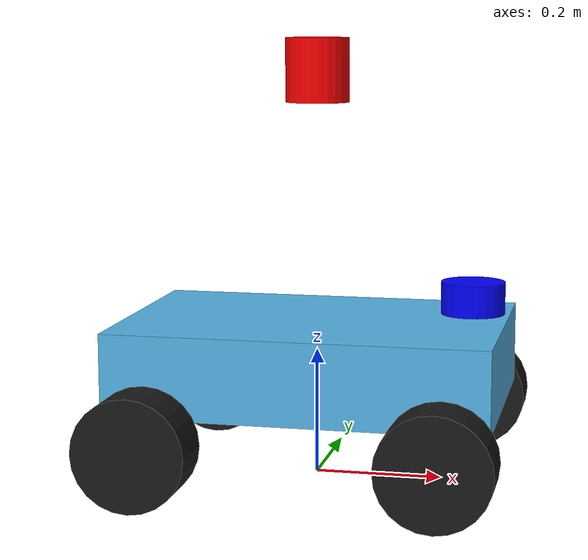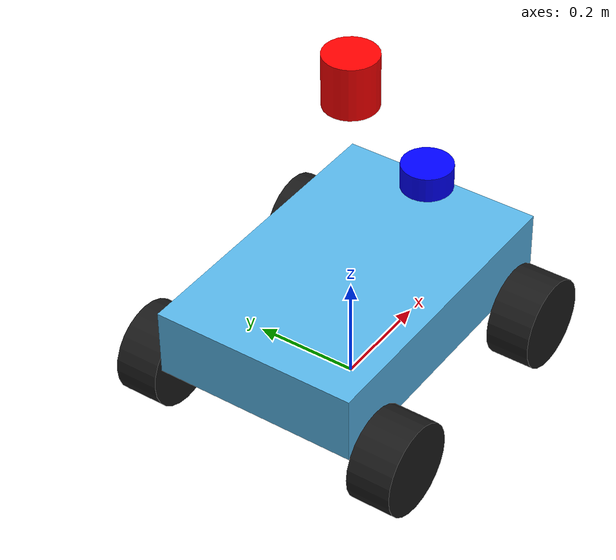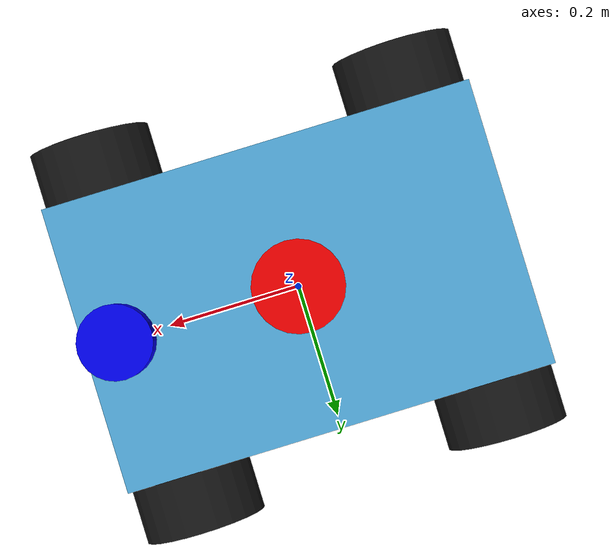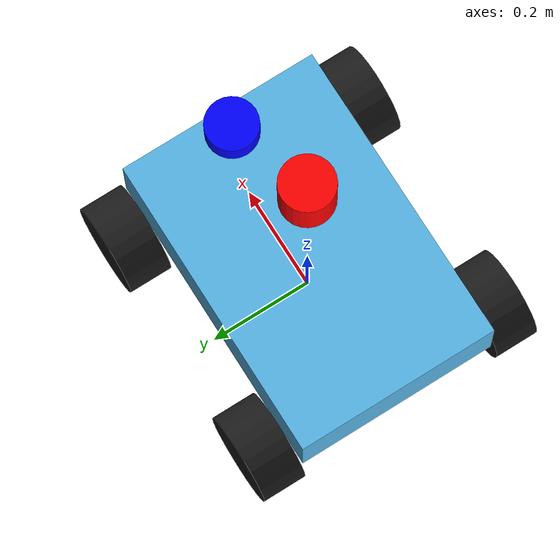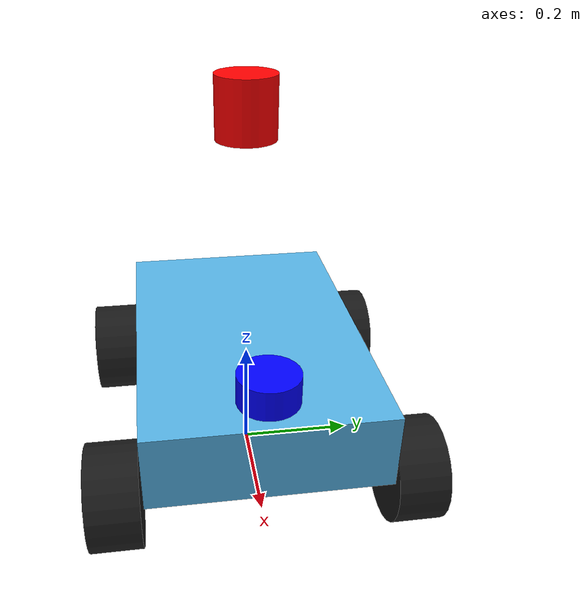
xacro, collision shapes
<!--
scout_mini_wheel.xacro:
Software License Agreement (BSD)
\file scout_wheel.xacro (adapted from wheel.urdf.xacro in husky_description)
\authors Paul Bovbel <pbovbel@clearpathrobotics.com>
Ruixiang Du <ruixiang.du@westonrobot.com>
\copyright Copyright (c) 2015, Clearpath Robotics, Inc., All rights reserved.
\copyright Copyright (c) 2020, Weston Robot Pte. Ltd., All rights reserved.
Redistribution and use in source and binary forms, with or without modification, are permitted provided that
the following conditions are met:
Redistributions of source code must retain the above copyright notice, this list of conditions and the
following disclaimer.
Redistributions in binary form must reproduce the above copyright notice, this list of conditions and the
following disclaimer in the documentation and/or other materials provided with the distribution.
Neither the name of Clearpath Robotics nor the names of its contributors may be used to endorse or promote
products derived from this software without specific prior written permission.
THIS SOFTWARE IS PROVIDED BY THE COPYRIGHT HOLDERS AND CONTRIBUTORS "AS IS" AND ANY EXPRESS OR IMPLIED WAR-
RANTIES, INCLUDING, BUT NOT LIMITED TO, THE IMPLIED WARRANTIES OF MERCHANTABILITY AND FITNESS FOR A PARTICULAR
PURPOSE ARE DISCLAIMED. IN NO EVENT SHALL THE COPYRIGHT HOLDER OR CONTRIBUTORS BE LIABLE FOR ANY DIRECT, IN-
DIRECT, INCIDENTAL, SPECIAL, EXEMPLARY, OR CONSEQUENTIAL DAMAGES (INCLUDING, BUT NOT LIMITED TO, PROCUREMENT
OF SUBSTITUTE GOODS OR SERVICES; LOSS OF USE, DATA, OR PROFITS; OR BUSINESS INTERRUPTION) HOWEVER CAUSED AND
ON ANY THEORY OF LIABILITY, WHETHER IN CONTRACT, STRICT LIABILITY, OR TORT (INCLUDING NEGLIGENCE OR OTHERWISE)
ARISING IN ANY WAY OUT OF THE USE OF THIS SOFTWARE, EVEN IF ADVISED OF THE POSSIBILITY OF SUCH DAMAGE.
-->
<?xml version="1.0"?>

<robot name="scout_mini"
    xmlns:xacro="http://ros.org/wiki/xacro"
    xmlns:controller="http://playerstage.sourceforge.net/gazebo/xmlschema/#controller"
    xmlns:interface="http://playerstage.sourceforge.net/gazebo/xmlschema/#interface"
    xmlns:sensor="http://playerstage.sourceforge.net/gazebo/xmlschema/#sensor">

    <xacro:arg name="robot_namespace" default="/" />

    <xacro:include filename="$(find scout_description)/urdf/scout_mini/scout_mini_wheel.xacro" />

    <!-- Variables -->
    <xacro:property name="M_PI" value="3.14159265359"/>

    <!-- Vehicle Geometries -->
    <xacro:property name="base_x_size" value="0.595000" />
    <xacro:property name="base_y_size" value="0.395000" />
    <xacro:property name="base_z_size" value="0.130000" />
    <xacro:property name="wheelbase" value="0.452" />
    <xacro:property name="track" value="0.49" />
    <xacro:property name="wheel_vertical_offset" value="-0.0905" />
    <xacro:property name="wheel_length" value="0.8520e-01" />
    <xacro:property name="wheel_radius" value="0.8750e-01" />

    <!-- Sensor Properties -->
    <xacro:property name="imu_stdev" value="0.0001" />
    <xacro:property name="imu_width" value="0.036"/>
    <xacro:property name="imu_length" value="0.038"/>
    <xacro:property name="imu_height" value="0.012"/>
    <xacro:property name="imu_offset_x" value="0"/>
    <xacro:property name="imu_offset_y" value="0"/>
    <xacro:property name="imu_offset_z" value="${-base_z_size/2 + 0.005 + 0.007}"/>

    <!-- Base Footprint (Root Link) -->
    <link name="base_footprint"/>

    <!-- Base Link -->
    <link name="base_link">
        <visual>
            <origin xyz="0 0 0" rpy="0 0 0" />
            <geometry>
                <mesh filename="package://scout_description/meshes/scout_mini/mini_base_link.dae" />
            </geometry>
        </visual>
        <collision>
            <origin xyz="0 0 0.008" rpy="0 0 0" />
            <geometry>
                <box size="${base_x_size} ${base_y_size} ${base_z_size}"/>
            </geometry>
        </collision>
        <inertial>
            <mass value="18" />
            <origin xyz="0.0 0.0 0.0" />
            <inertia ixx="2.288641" ixy="0" ixz="0" iyy="5.103976" iyz="0" izz="3.431465" />
        </inertial>
    </link>

    <!-- Joint connecting base_footprint to base_link -->
    <joint name="base_footprint_to_base_joint" type="fixed">
        <parent link="base_footprint" />
        <child link="base_link" />
        <origin xyz="0 0 ${wheel_radius - wheel_vertical_offset}" rpy="0 0 0" />
    </joint>

    <!-- IMU Sensor -->
    <link name="imu">
        <visual>
            <origin xyz="0 0 0" rpy="0 0 0" />
            <geometry>
                <box size="${imu_length} ${imu_width} ${imu_height}"/>
            </geometry>
            <material name="white">
                <color rgba="0.8 0.8 0.8 1" />
            </material>
        </visual>
        <collision>
            <geometry>
                <box size="${imu_length} ${imu_width} ${imu_height}"/>
            </geometry>
        </collision>
        <inertial>
            <mass value="0.01" />
            <origin xyz="0 0 0" />
            <inertia ixx="0.000001" ixy="0" ixz="0" iyy="0.000001" iyz="0" izz="0.000001" />
        </inertial>
    </link>

    <joint name="imu_to_base_joint" type="fixed">
        <parent link="base_link" />
        <child link="imu" />
        <origin xyz="${imu_offset_x} ${imu_offset_y} ${imu_offset_z}" rpy="${M_PI} 0 ${M_PI/2.0}" />
    </joint>

    <!-- 2D Laser Sensor -->
    <link name="laser2d">
        <visual>
            <origin xyz="0 0 0" rpy="0 0 0" />
            <geometry>
                <cylinder radius="0.05" length="0.05"/>
            </geometry>
            <material name="blue">
                <color rgba="0 0 1 1" />
            </material>
        </visual>
        <collision>
            <geometry>
                <cylinder radius="0.05" length="0.05"/>
            </geometry>
        </collision>
        <inertial>
            <mass value="0.05" />
            <origin xyz="0 0 0" />
            <inertia ixx="0.0001" ixy="0" ixz="0" iyy="0.0001" iyz="0" izz="0.0001" />
        </inertial>
    </link>

    <joint name="laser2d_to_base_joint" type="fixed">
        <parent link="base_link" />
        <child link="laser2d" />
        <origin xyz="${base_x_size/2 - 0.05} 0 ${base_z_size/2 + 0.05}"/>
    </joint>

    <!-- 3D Laser Sensor -->
    <link name="laser3d">
        <visual>
            <origin xyz="0 0 0" rpy="0 0 0" />
            <geometry>
                <cylinder radius="0.05" length="0.1"/>
            </geometry>
            <material name="red">
                <color rgba="1 0 0 1" />
            </material>
        </visual>
        <collision>
            <geometry>
                <cylinder radius="0.05" length="0.1"/>
            </geometry>
        </collision>
        <inertial>
            <mass value="0.1" />
            <origin xyz="0 0 0" />
            <inertia ixx="0.0002" ixy="0" ixz="0" iyy="0.0002" iyz="0" izz="0.0002" />
        </inertial>
    </link>

    <joint name="laser3d_to_base_joint" type="fixed">
        <parent link="base_link" />
        <child link="laser3d" />
        <origin xyz="0 0 ${base_z_size/2 + 0.4}"/>
    </joint>

    <!-- Scout wheel macros -->
    <xacro:scout_mini_wheel wheel_prefix="front_right">
        <origin xyz="${wheelbase/2} ${-track/2} ${wheel_vertical_offset}" rpy="0 0 0" />
    </xacro:scout_mini_wheel>
    <xacro:scout_mini_wheel wheel_prefix="front_left">
        <origin xyz="${wheelbase/2} ${track/2} ${wheel_vertical_offset}" rpy="0 0 0" />
    </xacro:scout_mini_wheel>
    <xacro:scout_mini_wheel wheel_prefix="rear_left">
        <origin xyz="${-wheelbase/2} ${track/2} ${wheel_vertical_offset}" rpy="0 0 0" />
    </xacro:scout_mini_wheel>
    <xacro:scout_mini_wheel wheel_prefix="rear_right">
        <origin xyz="${-wheelbase/2} ${-track/2} ${wheel_vertical_offset}" rpy="0 0 0" />
    </xacro:scout_mini_wheel>

    <!-- Gazebo Plugins (Unchanged) -->
    <gazebo reference="imu">
        <sensor name="imu" type="imu">
            <always_on>1</always_on>
            <update_rate>100</update_rate>
            <visualize>false</visualize>
            <topic>/model/robot/imu</topic>
            <frame_id>imu</frame_id>
            <gz_frame_id>imu</gz_frame_id>
            <ign_frame_id>imu</ign_frame_id>
        </sensor>
    </gazebo>

    <gazebo reference="laser2d">
        <sensor name="laser2d" type="gpu_lidar">
            <pose relative_to="laser2d">0 0 0 0 0 0</pose>
            <topic>/model/robot/scan</topic>
            <update_rate>10</update_rate>
            <ray>
                <scan>
                    <horizontal>
                        <samples>270</samples>
                        <resolution>1</resolution>
                        <min_angle>-2.356194</min_angle>
                        <max_angle>2.356194</max_angle>
                    </horizontal>
                    <vertical>
                        <samples>1</samples>
                        <resolution>0.01</resolution>
                        <min_angle>0</min_angle>
                        <max_angle>0</max_angle>
                    </vertical>
                </scan>
                <range>
                    <min>0.08</min>
                    <max>15.0</max>
                    <resolution>0.01</resolution>
                </range>
            </ray>
            <always_on>1</always_on>
            <visualize>true</visualize>
            <frame_id>laser2d</frame_id>
            <gz_frame_id>laser2d</gz_frame_id>
            <ign_frame_id>laser2d</ign_frame_id>
        </sensor>
    </gazebo>

    <gazebo reference="laser3d">
        <sensor name="laser3d" type="gpu_lidar">
            <pose relative_to="laser3d">0 0 0 0 0 0</pose>
            <topic>/model/robot/cloud</topic>
            <update_rate>10</update_rate>
            <ray>
                <scan>
                    <horizontal>
                        <samples>128</samples>
                        <resolution>0.01</resolution>
                        <min_angle>${-M_PI}</min_angle>
                        <max_angle>${M_PI}</max_angle>
                    </horizontal>
                    <vertical>
                        <samples>32</samples>
                        <resolution>0.01</resolution>
                        <min_angle>${-M_PI / 16.0}</min_angle>
                        <max_angle>${M_PI / 4.0}</max_angle>
                    </vertical>
                </scan>
                <range>
                    <min>0.2</min>
                    <max>100.0</max>
                    <resolution>0.01</resolution>
                </range>
            </ray>
            <always_on>1</always_on>
            <visualize>true</visualize>
            <frame_id>laser3d</frame_id>
            <gz_frame_id>laser3d</gz_frame_id>
            <ign_frame_id>laser3d</ign_frame_id>
        </sensor>
    </gazebo>

    <gazebo>
        <plugin
            filename="ignition-gazebo-pose-publisher-system"
            name="gz::sim::systems::PosePublisher">
            <use_pose_vector_msg>true</use_pose_vector_msg>
            <publish_nested_model_pose>true</publish_nested_model_pose>
            <static_publisher>true</static_publisher>
        </plugin>
    </gazebo>

    <ros2_control name="ScoutMiniGazeboSystem" type="system">
        <hardware>
            <plugin>gz_ros2_control/GazeboSimSystem</plugin>
        </hardware>
        <joint name="front_left_wheel">
            <command_interface name="velocity"/>
            <state_interface name="position"/>
            <state_interface name="velocity"/>
        </joint>
        <joint name="front_right_wheel">
            <command_interface name="velocity"/>
            <state_interface name="position"/>
            <state_interface name="velocity"/>
        </joint>
        <joint name="rear_left_wheel">
            <command_interface name="velocity"/>
            <state_interface name="position"/>
            <state_interface name="velocity"/>
        </joint>
        <joint name="rear_right_wheel">
            <command_interface name="velocity"/>
            <state_interface name="position"/>
            <state_interface name="velocity"/>
        </joint>
    </ros2_control>

    <gazebo>
        <plugin filename="libgz_ros2_control-system.so" name="gz_ros2_control::GazeboSimROS2ControlPlugin">
            <parameters>$(find scout_description)/config/control.yaml</parameters>
        </plugin>
    </gazebo>

</robot>

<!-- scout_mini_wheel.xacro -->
<robot xmlns:xacro="http://ros.org/wiki/xacro" name="scout_mini_wheel">

    <xacro:macro name="scout_mini_wheel" params="wheel_prefix *joint_pose">
        <link name="${wheel_prefix}_wheel_link">
            <inertial>
                <mass value="1" />
                <origin xyz="0 0 0" />
                <inertia ixx="0.7171" ixy="0" ixz="0" iyy="0.1361" iyz="0" izz="0.7171" />
            </inertial>
            <visual>
                <origin xyz="${-0.452/2 + 0.005} ${-0.49/2 + 0.02} 0.0925" rpy="0 0 0" />
                <geometry>
                    <mesh filename="package://scout_description/meshes/scout_mini/mini_wheel.dae" />
                </geometry>
                <material name="wheelcolor" >
                    <color rgba="0.1 0.1 0.1 1" />
                </material>
            </visual>
            <collision>
                <origin xyz="0 0 0" rpy="${M_PI/2} 0 0" />
                <geometry>
                    <cylinder length="${wheel_length}" radius="${wheel_radius}" />
                </geometry>
            </collision>
        </link>

        <joint name="${wheel_prefix}_wheel" type="continuous">
            <parent link="base_link"/>
            <child link="${wheel_prefix}_wheel_link"/>
            <xacro:insert_block name="joint_pose"/>
            <axis xyz="0 1 0" rpy="0 0 0" />
        </joint>
    </xacro:macro>

</robot>
